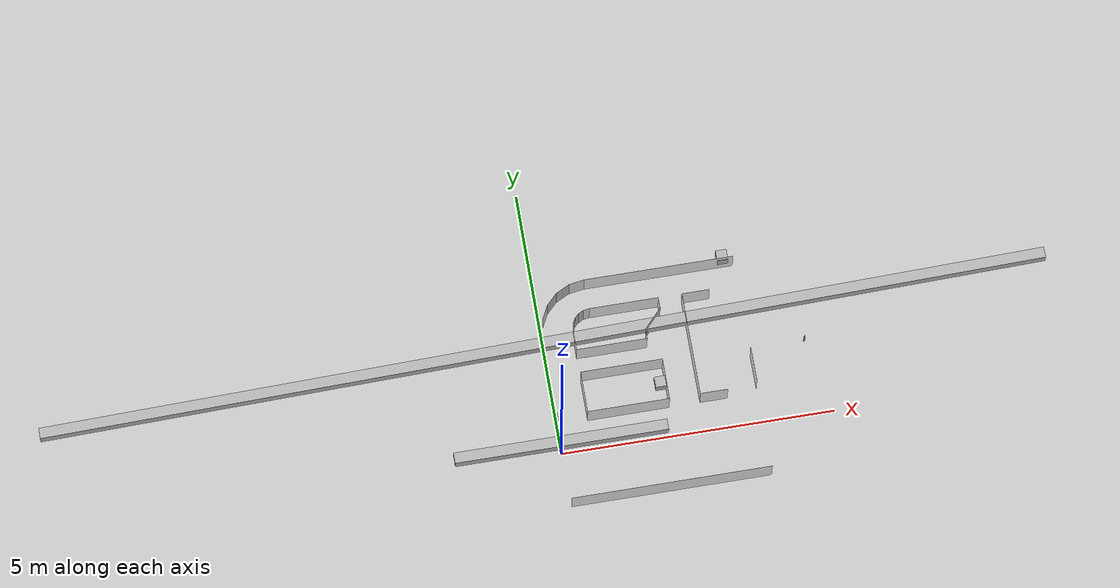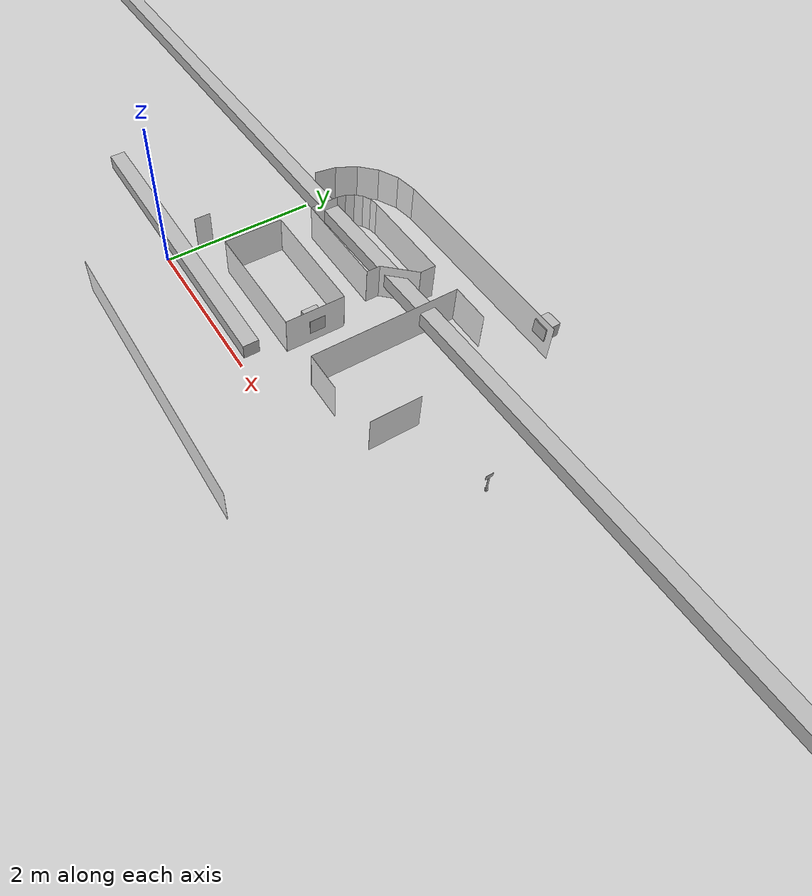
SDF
<sdf version="1.7">
 <world name="default">
  <light name="sun" type="directional">
   <pose>0 0 10 0 -0 0</pose>
   <diffuse>0.8 0.8 0.8 1</diffuse>
   <specular>0.1 0.1 0.1 1</specular>
   <attenuation>
    <range>1000</range>
    <constant>0.9</constant>
    <linear>0.01</linear>
    <quadratic>0.001</quadratic>
   </attenuation>
   <direction>-0.5 0.5 -1</direction>
   <spot><inner_angle>0</inner_angle><outer_angle>0</outer_angle><falloff>0</falloff></spot>
  </light>
  <model name="ground_plane">
   <static>1</static>
   <link name="link">
    <collision name="collision">
     <geometry><plane><normal>0 0 1</normal><size>100 100</size></plane></geometry>
     <surface><friction><ode><mu>100</mu><mu2>50</mu2></ode></friction></surface>
    </collision>
    <visual name="visual">
     <cast_shadows>0</cast_shadows>
     <geometry><plane><normal>0 0 1</normal><size>100 100</size></plane></geometry>
     <material>
      <script><uri>file://media/materials/scripts/gazebo.material</uri><name>Gazebo/Grey</name></script>
     </material>
    </visual>
   </link>
  </model>
  <model name="wall_0">
   <static>1</static>
   <link name="link">
    <collision name="collision"><geometry><box><size>0.210914 0.001 1</size></box></geometry></collision>
    <visual name="visual">
     <geometry><box><size>0.210914 0.001 1</size></box></geometry>
     <material>
      <script><name>Gazebo/White</name><uri>file://media/materials/scripts/gazebo.material</uri></script>
     </material>
    </visual>
   </link>
   <pose>0.012293 0.516888 0 0 -0 1.5708</pose>
  </model>
  <model name="wall_1">
   <static>1</static>
   <link name="link">
    <collision name="collision"><geometry><box><size>0.286088 0.001 1</size></box></geometry></collision>
    <visual name="visual">
     <geometry><box><size>0.286088 0.001 1</size></box></geometry>
     <material>
      <script><name>Gazebo/White</name><uri>file://media/materials/scripts/gazebo.material</uri></script>
     </material>
    </visual>
   </link>
   <pose>0.022377 2.27489 0 0 -0 1.41372</pose>
  </model>
  <model name="wall_2">
   <static>1</static>
   <link name="link">
    <collision name="collision"><geometry><box><size>0.286088 0.001 1</size></box></geometry></collision>
    <visual name="visual">
     <geometry><box><size>0.286088 0.001 1</size></box></geometry>
     <material>
      <script><name>Gazebo/White</name><uri>file://media/materials/scripts/gazebo.material</uri></script>
     </material>
    </visual>
   </link>
   <pose>0.109695 2.54362 0 0 -0 1.09956</pose>
  </model>
  <model name="wall_3">
   <static>1</static>
   <link name="link">
    <collision name="collision"><geometry><box><size>0.286088 0.001 1</size></box></geometry></collision>
    <visual name="visual">
     <geometry><box><size>0.286088 0.001 1</size></box></geometry>
     <material>
      <script><name>Gazebo/White</name><uri>file://media/materials/scripts/gazebo.material</uri></script>
     </material>
    </visual>
   </link>
   <pose>0.275783 2.77222 0 0 -0 0.785398</pose>
  </model>
  <model name="wall_4">
   <static>1</static>
   <link name="link">
    <collision name="collision"><geometry><box><size>0.286088 0.001 1</size></box></geometry></collision>
    <visual name="visual">
     <geometry><box><size>0.286088 0.001 1</size></box></geometry>
     <material>
      <script><name>Gazebo/White</name><uri>file://media/materials/scripts/gazebo.material</uri></script>
     </material>
    </visual>
   </link>
   <pose>0.504383 2.93831 0 0 -0 0.471239</pose>
  </model>
  <model name="wall_5">
   <static>1</static>
   <link name="link">
    <collision name="collision"><geometry><box><size>0.286088 0.001 1</size></box></geometry></collision>
    <visual name="visual">
     <geometry><box><size>0.286088 0.001 1</size></box></geometry>
     <material>
      <script><name>Gazebo/White</name><uri>file://media/materials/scripts/gazebo.material</uri></script>
     </material>
    </visual>
   </link>
   <pose>0.773119 3.02563 0 0 -0 0.15708</pose>
  </model>
  <model name="wall_6">
   <static>1</static>
   <link name="link">
    <collision name="collision"><geometry><box><size>2.74321 0.001 1</size></box></geometry></collision>
    <visual name="visual">
     <geometry><box><size>2.74321 0.001 1</size></box></geometry>
     <material>
      <script><name>Gazebo/White</name><uri>file://media/materials/scripts/gazebo.material</uri></script>
     </material>
    </visual>
   </link>
   <pose>2.286 3.04801 0 0 -0 0</pose>
  </model>
  <model name="wall_7">
   <static>1</static>
   <link name="link">
    <collision name="collision"><geometry><box><size>0.640543 0.001 1</size></box></geometry></collision>
    <visual name="visual">
     <geometry><box><size>0.640543 0.001 1</size></box></geometry>
     <material>
      <script><name>Gazebo/White</name><uri>file://media/materials/scripts/gazebo.material</uri></script>
     </material>
    </visual>
   </link>
   <pose>3.67024 0.958971 0 0 0 -1.5708</pose>
  </model>
  <model name="wall_8">
   <static>1</static>
   <link name="link">
    <collision name="collision"><geometry><box><size>3.65761 0.001 1</size></box></geometry></collision>
    <visual name="visual">
     <geometry><box><size>3.65761 0.001 1</size></box></geometry>
     <material>
      <script><name>Gazebo/White</name><uri>file://media/materials/scripts/gazebo.material</uri></script>
     </material>
    </visual>
   </link>
   <pose>1.8288 -1.00563 0 0 0 -3.14159</pose>
  </model>
  <model name="wall_9">
   <static>1</static>
   <link name="link">
    <collision name="collision"><geometry><box><size>0.762002 0.001 1</size></box></geometry></collision>
    <visual name="visual">
     <geometry><box><size>0.762002 0.001 1</size></box></geometry>
     <material>
      <script><name>Gazebo/White</name><uri>file://media/materials/scripts/gazebo.material</uri></script>
     </material>
    </visual>
   </link>
   <pose>0.558801 0.939802 0 0 -0 1.5708</pose>
  </model>
  <model name="wall_10">
   <static>1</static>
   <link name="link">
    <collision name="collision"><geometry><box><size>1.4986 0.001 1</size></box></geometry></collision>
    <visual name="visual">
     <geometry><box><size>1.4986 0.001 1</size></box></geometry>
     <material>
      <script><name>Gazebo/White</name><uri>file://media/materials/scripts/gazebo.material</uri></script>
     </material>
    </visual>
   </link>
   <pose>1.31088 1.32095 0 0 -0 0</pose>
  </model>
  <model name="wall_11">
   <static>1</static>
   <link name="link">
    <collision name="collision"><geometry><box><size>0.762002 0.001 1</size></box></geometry></collision>
    <visual name="visual">
     <geometry><box><size>0.762002 0.001 1</size></box></geometry>
     <material>
      <script><name>Gazebo/White</name><uri>file://media/materials/scripts/gazebo.material</uri></script>
     </material>
    </visual>
   </link>
   <pose>2.0574 0.939802 0 0 0 -1.5708</pose>
  </model>
  <model name="wall_12">
   <static>1</static>
   <link name="link">
    <collision name="collision"><geometry><box><size>1.4986 0.001 1</size></box></geometry></collision>
    <visual name="visual">
     <geometry><box><size>1.4986 0.001 1</size></box></geometry>
     <material>
      <script><name>Gazebo/White</name><uri>file://media/materials/scripts/gazebo.material</uri></script>
     </material>
    </visual>
   </link>
   <pose>1.3081 0.558801 0 0 0 -3.14159</pose>
  </model>
  <model name="wall_13">
   <static>1</static>
   <link name="link">
    <collision name="collision"><geometry><box><size>0.381001 0.001 1</size></box></geometry></collision>
    <visual name="visual">
     <geometry><box><size>0.381001 0.001 1</size></box></geometry>
     <material>
      <script><name>Gazebo/White</name><uri>file://media/materials/scripts/gazebo.material</uri></script>
     </material>
    </visual>
   </link>
   <pose>0.558801 1.9431 0 0 -0 1.5708</pose>
  </model>
  <model name="wall_14">
   <static>1</static>
   <link name="link">
    <collision name="collision"><geometry><box><size>0.111256 0.001 1</size></box></geometry></collision>
    <visual name="visual">
     <geometry><box><size>0.111256 0.001 1</size></box></geometry>
     <material>
      <script><name>Gazebo/White</name><uri>file://media/materials/scripts/gazebo.material</uri></script>
     </material>
    </visual>
   </link>
   <pose>0.567503 2.18855 0 0 -0 1.41372</pose>
  </model>
  <model name="wall_15">
   <static>1</static>
   <link name="link">
    <collision name="collision"><geometry><box><size>0.111256 0.001 1</size></box></geometry></collision>
    <visual name="visual">
     <geometry><box><size>0.111256 0.001 1</size></box></geometry>
     <material>
      <script><name>Gazebo/White</name><uri>file://media/materials/scripts/gazebo.material</uri></script>
     </material>
    </visual>
   </link>
   <pose>0.60146 2.29306 0 0 -0 1.09956</pose>
  </model>
  <model name="wall_16">
   <static>1</static>
   <link name="link">
    <collision name="collision"><geometry><box><size>0.111256 0.001 1</size></box></geometry></collision>
    <visual name="visual">
     <geometry><box><size>0.111256 0.001 1</size></box></geometry>
     <material>
      <script><name>Gazebo/White</name><uri>file://media/materials/scripts/gazebo.material</uri></script>
     </material>
    </visual>
   </link>
   <pose>0.66605 2.38196 0 0 -0 0.785398</pose>
  </model>
  <model name="wall_17">
   <static>1</static>
   <link name="link">
    <collision name="collision"><geometry><box><size>0.111256 0.001 1</size></box></geometry></collision>
    <visual name="visual">
     <geometry><box><size>0.111256 0.001 1</size></box></geometry>
     <material>
      <script><name>Gazebo/White</name><uri>file://media/materials/scripts/gazebo.material</uri></script>
     </material>
    </visual>
   </link>
   <pose>0.75495 2.44655 0 0 -0 0.471239</pose>
  </model>
  <model name="wall_18">
   <static>1</static>
   <link name="link">
    <collision name="collision"><geometry><box><size>0.111256 0.001 1</size></box></geometry></collision>
    <visual name="visual">
     <geometry><box><size>0.111256 0.001 1</size></box></geometry>
     <material>
      <script><name>Gazebo/White</name><uri>file://media/materials/scripts/gazebo.material</uri></script>
     </material>
    </visual>
   </link>
   <pose>0.859458 2.4805 0 0 -0 0.15708</pose>
  </model>
  <model name="wall_19">
   <static>1</static>
   <link name="link">
    <collision name="collision"><geometry><box><size>1.27 0.001 1</size></box></geometry></collision>
    <visual name="visual">
     <geometry><box><size>1.27 0.001 1</size></box></geometry>
     <material>
      <script><name>Gazebo/White</name><uri>file://media/materials/scripts/gazebo.material</uri></script>
     </material>
    </visual>
   </link>
   <pose>1.5494 2.48921 0 0 -0 0</pose>
  </model>
  <model name="wall_20">
   <static>1</static>
   <link name="link">
    <collision name="collision"><geometry><box><size>0.2032 0.001 1</size></box></geometry></collision>
    <visual name="visual">
     <geometry><box><size>0.2032 0.001 1</size></box></geometry>
     <material>
      <script><name>Gazebo/White</name><uri>file://media/materials/scripts/gazebo.material</uri></script>
     </material>
    </visual>
   </link>
   <pose>2.1844 2.38761 0 0 0 -1.5708</pose>
  </model>
  <model name="wall_21">
   <static>1</static>
   <link name="link">
    <collision name="collision"><geometry><box><size>0.485267 0.001 1</size></box></geometry></collision>
    <visual name="visual">
     <geometry><box><size>0.485267 0.001 1</size></box></geometry>
     <material>
      <script><name>Gazebo/White</name><uri>file://media/materials/scripts/gazebo.material</uri></script>
     </material>
    </visual>
   </link>
   <pose>2.0193 2.1082 0 0 0 -2.31917</pose>
  </model>
  <model name="wall_22">
   <static>1</static>
   <link name="link">
    <collision name="collision"><geometry><box><size>0.1778 0.001 1</size></box></geometry></collision>
    <visual name="visual">
     <geometry><box><size>0.1778 0.001 1</size></box></geometry>
     <material>
      <script><name>Gazebo/White</name><uri>file://media/materials/scripts/gazebo.material</uri></script>
     </material>
    </visual>
   </link>
   <pose>1.8542 1.8415 0 0 0 -1.5708</pose>
  </model>
  <model name="wall_23">
   <static>1</static>
   <link name="link">
    <collision name="collision"><geometry><box><size>1.2954 0.001 1</size></box></geometry></collision>
    <visual name="visual">
     <geometry><box><size>1.2954 0.001 1</size></box></geometry>
     <material>
      <script><name>Gazebo/White</name><uri>file://media/materials/scripts/gazebo.material</uri></script>
     </material>
    </visual>
   </link>
   <pose>1.2065 1.7526 0 0 0 -3.14159</pose>
  </model>
  <model name="wall_24">
   <static>1</static>
   <link name="link">
    <collision name="collision"><geometry><box><size>0.508001 0.001 1</size></box></geometry></collision>
    <visual name="visual">
     <geometry><box><size>0.508001 0.001 1</size></box></geometry>
     <material>
      <script><name>Gazebo/White</name><uri>file://media/materials/scripts/gazebo.material</uri></script>
     </material>
    </visual>
   </link>
   <pose>2.87021 2.48921 0 0 -0 0</pose>
  </model>
  <model name="wall_25">
   <static>1</static>
   <link name="link">
    <collision name="collision"><geometry><box><size>0.508001 0.001 1</size></box></geometry></collision>
    <visual name="visual">
     <geometry><box><size>0.508001 0.001 1</size></box></geometry>
     <material>
      <script><name>Gazebo/White</name><uri>file://media/materials/scripts/gazebo.material</uri></script>
     </material>
    </visual>
   </link>
   <pose>2.87021 0.558801 0 0 0 -3.14159</pose>
  </model>
  <model name="wall_26">
   <static>1</static>
   <link name="link">
    <collision name="collision"><geometry><box><size>1.9304 0.001 1</size></box></geometry></collision>
    <visual name="visual">
     <geometry><box><size>1.9304 0.001 1</size></box></geometry>
     <material>
      <script><name>Gazebo/White</name><uri>file://media/materials/scripts/gazebo.material</uri></script>
     </material>
    </visual>
   </link>
   <pose>2.6196 1.51832 0 0 -0 1.5708</pose>
  </model>
  <model name="flag">
   <link name="plate">
    <pose>0 0 0.2425 0 -0 0</pose>
    <collision name="collision">
     <geometry><box><size>0.001 0.1 0.065</size></box></geometry>
     <surface><friction><ode><mu>1</mu><mu2>1</mu2></ode></friction></surface>
    </collision>
    <visual name="visual"><geometry><box><size>0.001 0.1 0.065</size></box></geometry></visual>
    <inertial>
     <inertia><ixx>0.1</ixx><ixy>0</ixy><ixz>0</ixz><iyy>0.1</iyy><iyz>0</iyz><izz>0.1</izz></inertia>
     <mass>0.1</mass>
    </inertial>
   </link>
   <link name="pole">
    <pose>0 0 0.11 0 -0 0</pose>
    <collision name="collision">
     <geometry><cylinder><radius>0.01</radius><length>0.2</length></cylinder></geometry>
     <surface>
      <friction><torsional><coefficient>1</coefficient></torsional><ode><mu>1</mu><mu2>1</mu2></ode></friction>
     </surface>
    </collision>
    <visual name="visual">
     <geometry><cylinder><radius>0.01</radius><length>0.2</length></cylinder></geometry>
    </visual>
    <inertial>
     <inertia><ixx>1</ixx><ixy>0</ixy><ixz>0</ixz><iyy>1</iyy><iyz>0</iyz><izz>1</izz></inertia>
     <mass>1</mass>
    </inertial>
   </link>
   <link name="base">
    <collision name="collision">
     <geometry><cylinder><radius>0.02</radius><length>0.02</length></cylinder></geometry>
     <surface><friction><ode><mu>0.01</mu><mu2>0.01</mu2></ode></friction></surface>
    </collision>
    <visual name="visual">
     <geometry><cylinder><radius>0.02</radius><length>0.02</length></cylinder></geometry>
    </visual>
    <inertial>
     <inertia><ixx>0.1</ixx><ixy>0</ixy><ixz>0</ixz><iyy>0.1</iyy><iyz>0</iyz><izz>0.1</izz></inertia>
     <mass>0.1</mass>
    </inertial>
    <gravity>0</gravity>
   </link>
   <joint name="base_pole" type="fixed">
    <parent>base</parent>
    <child>pole</child>
    <pose>0 0 0.02 0 -0 0</pose>
   </joint>
   <joint name="pole_plate" type="fixed">
    <parent>pole</parent>
    <child>plate</child>
    <pose>0 0 0.1 0 -0 0</pose>
   </joint>
   <pose>4.69223 1.40728 0.010019 -0.000685 -0.000632 -3.13999</pose>
  </model>
  <gravity>0 0 -9.8</gravity>
  <magnetic_field>6e-06 2.3e-05 -4.2e-05</magnetic_field>
  <atmosphere type="adiabatic"/>
  <physics name="default_physics" default="0" type="ode">
   <max_step_size>0.001</max_step_size>
   <real_time_factor>1</real_time_factor>
   <real_time_update_rate>1000</real_time_update_rate>
  </physics>
  <scene><ambient>0.4 0.4 0.4 1</ambient><background>0.7 0.7 0.7 1</background><shadows>1</shadows></scene>
  <spherical_coordinates>
   <surface_model>EARTH_WGS84</surface_model>
   <latitude_deg>0</latitude_deg>
   <longitude_deg>0</longitude_deg>
   <elevation>0</elevation>
   <heading_deg>0</heading_deg>
  </spherical_coordinates>
  <model name="cow">
   <static>1</static>
   <link name="link">
    <collision name="collision"><geometry><box><size>18.5202 0.2 0.2</size></box></geometry></collision>
    <visual name="visual">
     <cast_shadows>0</cast_shadows>
     <geometry><box><size>18.5202 0.2 0.2</size></box></geometry>
     <material>
      <script>
       <uri>model://cow/materials/scripts</uri>
       <uri>model://cow/materials/textures</uri>
       <name>vrc/cow</name>
      </script>
     </material>
    </visual>
   </link>
   <pose>0.01287 2.03431 0.263282 0 -0 0.021377</pose>
  </model>
  <model name="cow_0">
   <static>1</static>
   <link name="link">
    <collision name="collision"><geometry><box><size>3.90503 0.2 0.2</size></box></geometry></collision>
    <visual name="visual">
     <cast_shadows>0</cast_shadows>
     <geometry><box><size>3.90503 0.2 0.2</size></box></geometry>
     <material>
      <script>
       <uri>model://zebra/materials/scripts</uri>
       <uri>model://zebra/materials/textures</uri>
       <name>vrc/zebra</name>
      </script>
     </material>
    </visual>
   </link>
   <pose>0.008056 0.158972 0.177023 0 -0 0</pose>
  </model>
  <model name="elephant">
   <static>1</static>
   <link name="link">
    <collision name="collision"><geometry><box><size>0.2 0.2 0.2</size></box></geometry></collision>
    <visual name="visual">
     <cast_shadows>0</cast_shadows>
     <geometry><box><size>0.2 0.2 0.2</size></box></geometry>
     <material>
      <script>
       <uri>model://elephant/materials/scripts</uri>
       <uri>model://elephant/materials/textures</uri>
       <name>vrc/elephant</name>
      </script>
     </material>
    </visual>
   </link>
   <pose>1.9611 0.963565 0.22545 0 -0 0</pose>
  </model>
  <model name="giraffe">
   <static>1</static>
   <link name="link">
    <collision name="collision"><geometry><box><size>0.2 0.2 0.2</size></box></geometry></collision>
    <visual name="visual">
     <cast_shadows>0</cast_shadows>
     <geometry><box><size>0.2 0.2 0.2</size></box></geometry>
     <material>
      <script>
       <uri>model://giraffe/materials/scripts</uri>
       <uri>model://giraffe/materials/textures</uri>
       <name>vrc/giraffe</name>
      </script>
     </material>
    </visual>
   </link>
   <pose>3.46787 3.13384 0.300566 0 -0 0</pose>
  </model>
 </world>
</sdf>
